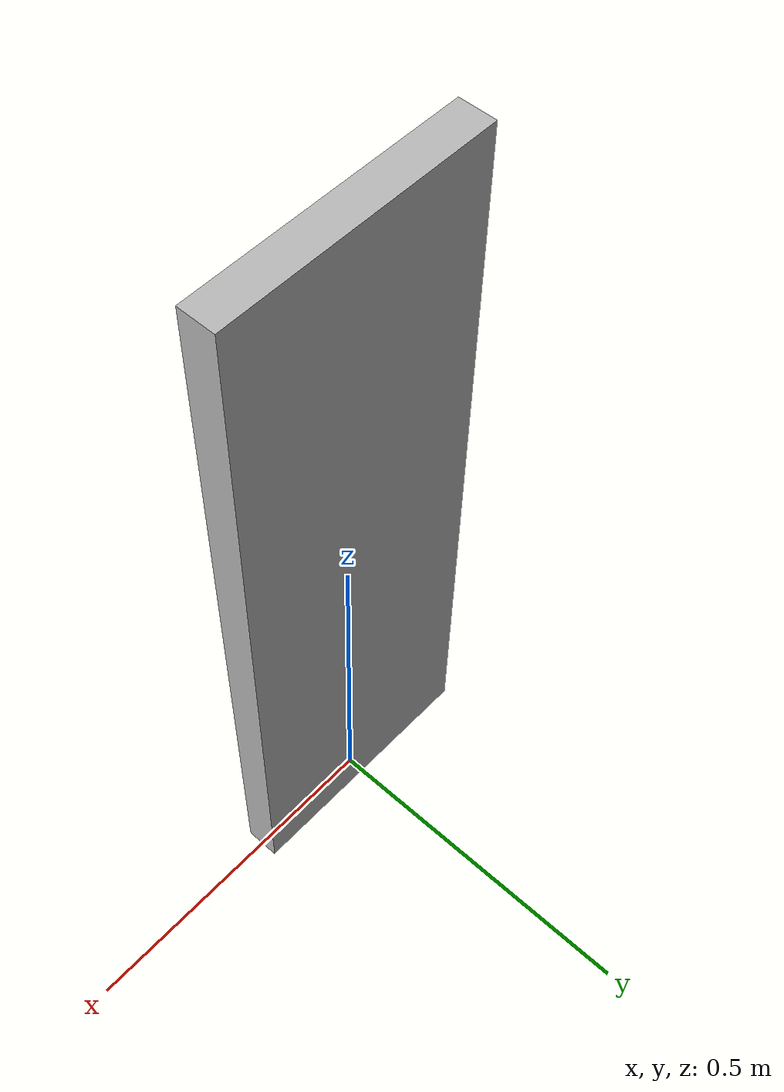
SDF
<?xml version="1.0" ?>
<sdf version="1.6">
  <model name="person_child_2">
    <static>true</static>
    <link name="link">
      <gravity>false</gravity>
      <pose>0 0 0.55 0 0 0</pose>
      <visual name="visual">
        <geometry>
          <box><size>0.38 0.05 1.1</size></box>
        </geometry>
        <material>
          <script>
            <uri>model://person_child_2/materials/scripts</uri>
            <uri>model://person_child_2/materials/textures</uri>
            <name>PersonChild2/Diffuse</name>
          </script>
        </material>
      </visual>
    </link>
  </model>
</sdf>
